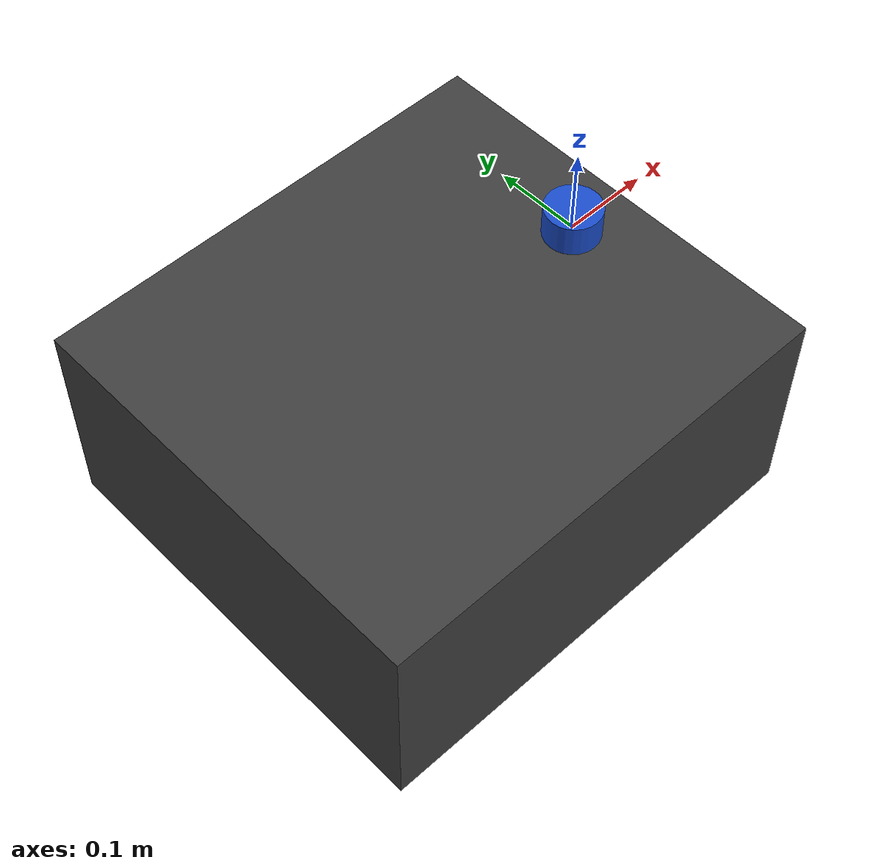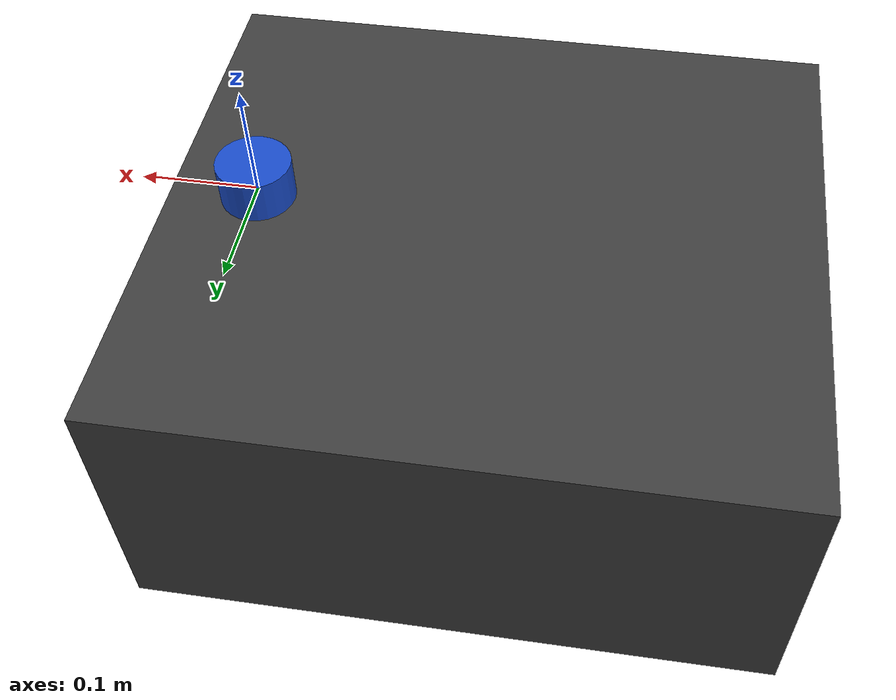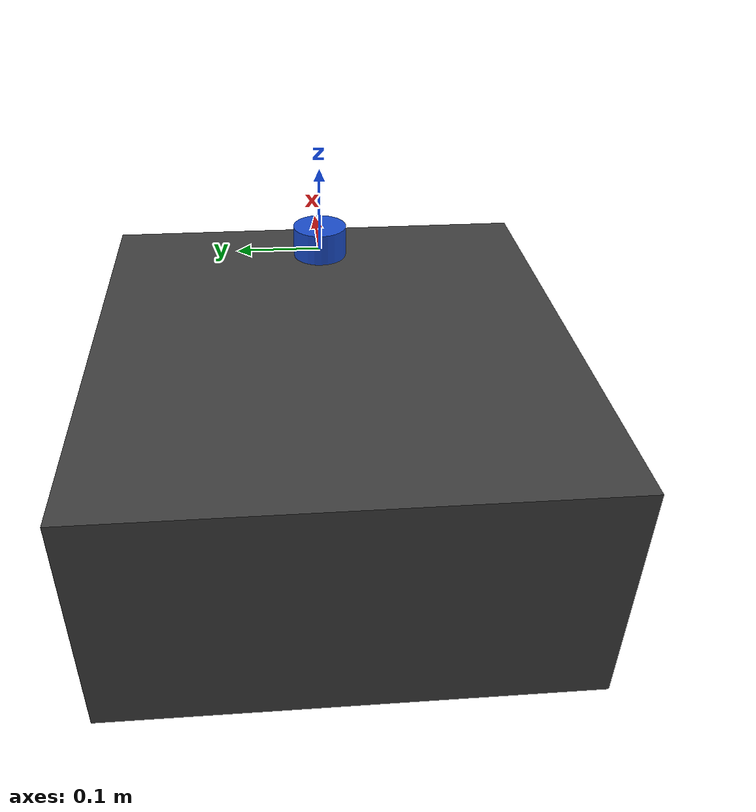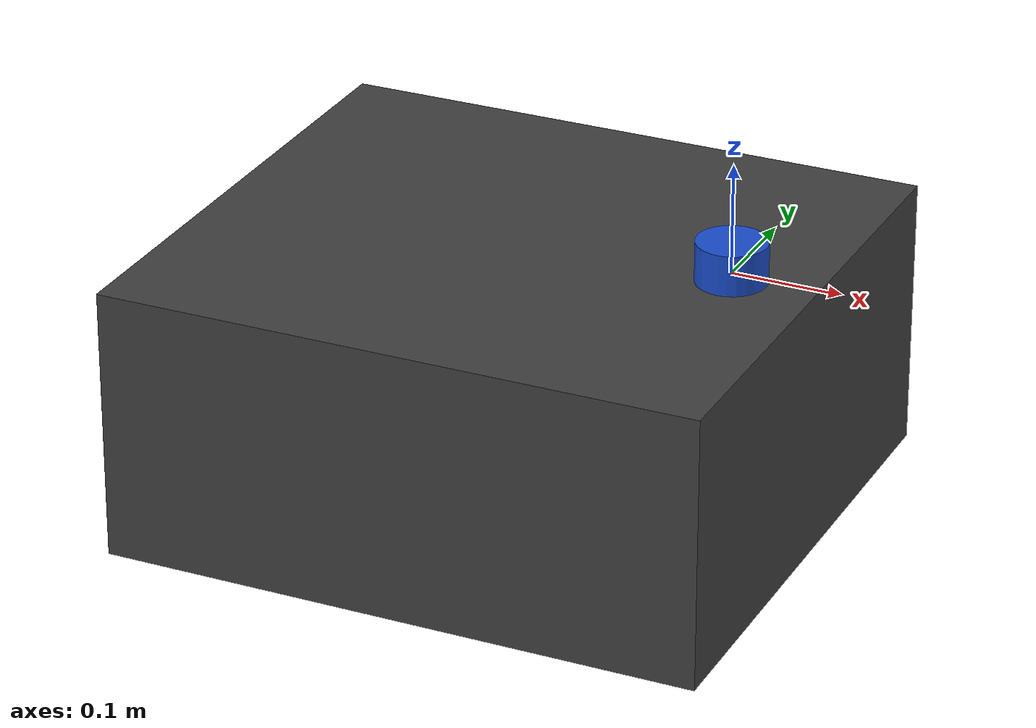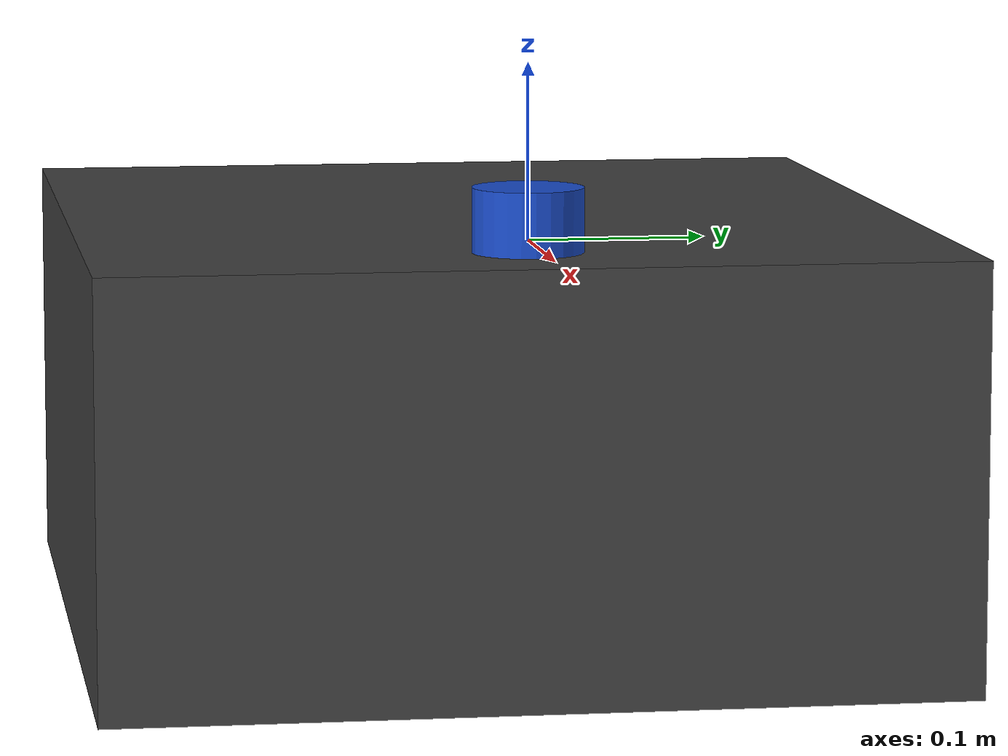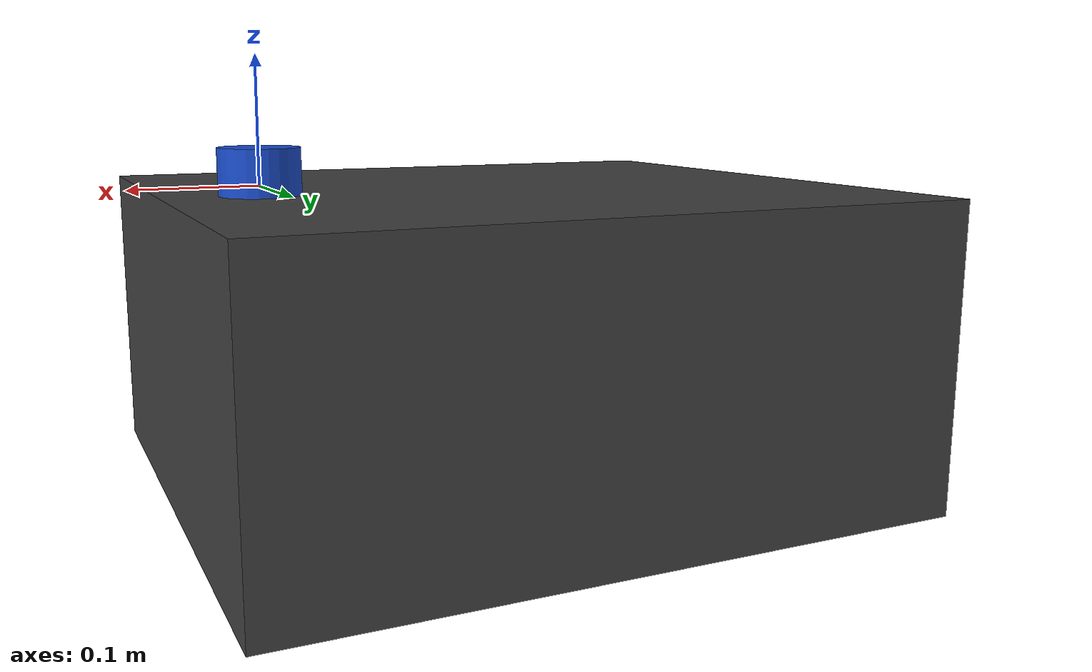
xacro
<?xml version="1.0"?>
<robot xmlns:xacro="http://ros.org/wiki/xacro" name="ranger_mini">

  <!-- 雷达在 base_footprint 坐标系下的安装位置（米） -->
  <xacro:property name="lidar_x" value="0.2"/>
  <xacro:property name="lidar_y" value="0.0"/>
  <!-- 顶板上表面 0.25 + MID360 底面到光心 0.047 -->
  <xacro:property name="lidar_z" value="0.30"/>

  <!-- Ranger Mini 外形尺寸（米）：长 x 宽 x 高，底盘离地间隙 -->
  <xacro:property name="chassis_length" value="0.552"/>
  <xacro:property name="chassis_width" value="0.500"/>
  <xacro:property name="chassis_height" value="0.250"/>
  <xacro:property name="ground_clearance" value="0.043"/>

  <material name="dark_grey">
    <color rgba="0.25 0.25 0.25 1.0"/>
  </material>
  <material name="livox_blue">
    <color rgba="0.1 0.3 0.8 1.0"/>
  </material>

  <!-- 根 link：MID360 雷达（FAST-LIO 的 body 系） -->
  <link name="body">
    <visual>
      <origin xyz="0 0 0" rpy="0 0 0"/>
      <geometry>
        <cylinder radius="0.032" length="0.06"/>
      </geometry>
      <material name="livox_blue"/>
    </visual>
  </link>

  <joint name="body_to_base_footprint" type="fixed">
    <parent link="body"/>
    <child link="base_footprint"/>
    <origin xyz="${-lidar_x} ${-lidar_y} ${-lidar_z}" rpy="0 0 0"/>
  </joint>

  <!-- 底盘中心在地面的投影 -->
  <link name="base_footprint"/>

  <joint name="base_footprint_to_base_link" type="fixed">
    <parent link="base_footprint"/>
    <child link="base_link"/>
    <origin xyz="0 0 ${ground_clearance + chassis_height / 2}" rpy="0 0 0"/>
  </joint>

  <!-- 底盘本体（box 简化模型） -->
  <link name="base_link">
    <visual>
      <origin xyz="0 0 0" rpy="0 0 0"/>
      <geometry>
        <box size="${chassis_length} ${chassis_width} ${chassis_height}"/>
      </geometry>
      <material name="dark_grey"/>
    </visual>
  </link>

</robot>
